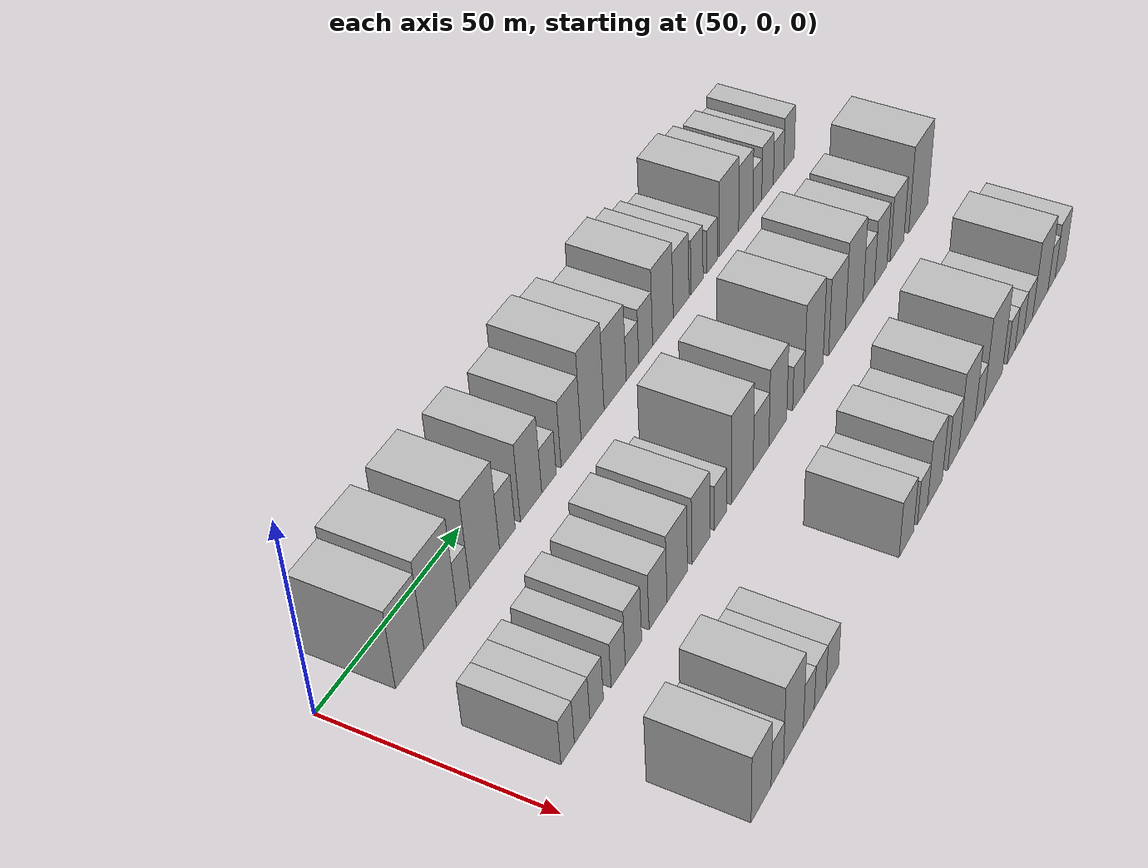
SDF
<sdf version="1.6">
 <world name="default">
  <model name="building_38">
   <static>1</static>
   <pose>50.0000 15.9402 0 0.000000 0.000000 0.000000</pose>
   <link name="link">
    <pose>0 0 10.50 0 0 0</pose>
    <collision name="collision"><geometry><box><size>20.0000 9.8565 21.0000</size></box></geometry></collision>
    <visual name="visual">
     <cast_shadows>0</cast_shadows>
     <geometry><box><size>20.0000 9.8565 21.0000</size></box></geometry>
     <material>
      <script>
       <uri>model://HANNAS_wall/materials/scripts</uri>
       <uri>model://HANNAS_wall/materials/textures</uri>
       <name>vrc/HANNAS_wall</name>
      </script>
     </material>
    </visual>
   </link>
  </model>
  <model name="building_39">
   <static>1</static>
   <pose>50.0000 26.6583 0 0.000000 0.000000 0.000000</pose>
   <link name="link">
    <pose>0 0 12.00 0 0 0</pose>
    <collision name="collision"><geometry><box><size>20.0000 11.5798 24.0000</size></box></geometry></collision>
    <visual name="visual">
     <cast_shadows>0</cast_shadows>
     <geometry><box><size>20.0000 11.5798 24.0000</size></box></geometry>
     <material>
      <script>
       <uri>model://HANNAS_wall/materials/scripts</uri>
       <uri>model://HANNAS_wall/materials/textures</uri>
       <name>vrc/HANNAS_wall</name>
      </script>
     </material>
    </visual>
   </link>
  </model>
  <model name="building_40">
   <static>1</static>
   <pose>50.0000 34.9104 0 0.000000 0.000000 0.000000</pose>
   <link name="link">
    <pose>0 0 6.00 0 0 0</pose>
    <collision name="collision"><geometry><box><size>20.0000 4.9244 12.0000</size></box></geometry></collision>
    <visual name="visual">
     <cast_shadows>0</cast_shadows>
     <geometry><box><size>20.0000 4.9244 12.0000</size></box></geometry>
     <material>
      <script>
       <uri>model://HANNAS_wall/materials/scripts</uri>
       <uri>model://HANNAS_wall/materials/textures</uri>
       <name>vrc/HANNAS_wall</name>
      </script>
     </material>
    </visual>
   </link>
  </model>
  <model name="building_41">
   <static>1</static>
   <pose>50.0000 42.9367 0 0.000000 0.000000 0.000000</pose>
   <link name="link">
    <pose>0 0 12.00 0 0 0</pose>
    <collision name="collision"><geometry><box><size>20.0000 11.1283 24.0000</size></box></geometry></collision>
    <visual name="visual">
     <cast_shadows>0</cast_shadows>
     <geometry><box><size>20.0000 11.1283 24.0000</size></box></geometry>
     <material>
      <script>
       <uri>model://HANNAS_wall/materials/scripts</uri>
       <uri>model://HANNAS_wall/materials/textures</uri>
       <name>vrc/HANNAS_wall</name>
      </script>
     </material>
    </visual>
   </link>
  </model>
  <model name="building_42">
   <static>1</static>
   <pose>50.0000 51.5553 0 0.000000 0.000000 0.000000</pose>
   <link name="link">
    <pose>0 0 7.50 0 0 0</pose>
    <collision name="collision"><geometry><box><size>20.0000 6.1088 15.0000</size></box></geometry></collision>
    <visual name="visual">
     <cast_shadows>0</cast_shadows>
     <geometry><box><size>20.0000 6.1088 15.0000</size></box></geometry>
     <material>
      <script>
       <uri>model://HANNAS_wall/materials/scripts</uri>
       <uri>model://HANNAS_wall/materials/textures</uri>
       <name>vrc/HANNAS_wall</name>
      </script>
     </material>
    </visual>
   </link>
  </model>
  <model name="building_43">
   <static>1</static>
   <pose>50.0000 60.8794 0 0.000000 0.000000 0.000000</pose>
   <link name="link">
    <pose>0 0 10.50 0 0 0</pose>
    <collision name="collision"><geometry><box><size>20.0000 8.5394 21.0000</size></box></geometry></collision>
    <visual name="visual">
     <cast_shadows>0</cast_shadows>
     <geometry><box><size>20.0000 8.5394 21.0000</size></box></geometry>
     <material>
      <script>
       <uri>model://HANNAS_wall/materials/scripts</uri>
       <uri>model://HANNAS_wall/materials/textures</uri>
       <name>vrc/HANNAS_wall</name>
      </script>
     </material>
    </visual>
   </link>
  </model>
  <model name="building_44">
   <static>1</static>
   <pose>50.0000 68.1219 0 0.000000 0.000000 0.000000</pose>
   <link name="link">
    <pose>0 0 6.00 0 0 0</pose>
    <collision name="collision"><geometry><box><size>20.0000 5.9457 12.0000</size></box></geometry></collision>
    <visual name="visual">
     <cast_shadows>0</cast_shadows>
     <geometry><box><size>20.0000 5.9457 12.0000</size></box></geometry>
     <material>
      <script>
       <uri>model://HANNAS_wall/materials/scripts</uri>
       <uri>model://HANNAS_wall/materials/textures</uri>
       <name>vrc/HANNAS_wall</name>
      </script>
     </material>
    </visual>
   </link>
  </model>
  <model name="building_45">
   <static>1</static>
   <pose>50.0000 77.2916 0 0.000000 0.000000 0.000000</pose>
   <link name="link">
    <pose>0 0 9.00 0 0 0</pose>
    <collision name="collision"><geometry><box><size>20.0000 8.3937 18.0000</size></box></geometry></collision>
    <visual name="visual">
     <cast_shadows>0</cast_shadows>
     <geometry><box><size>20.0000 8.3937 18.0000</size></box></geometry>
     <material>
      <script>
       <uri>model://HANNAS_wall/materials/scripts</uri>
       <uri>model://HANNAS_wall/materials/textures</uri>
       <name>vrc/HANNAS_wall</name>
      </script>
     </material>
    </visual>
   </link>
  </model>
  <model name="building_46">
   <static>1</static>
   <pose>50.0000 86.4690 0 0.000000 0.000000 0.000000</pose>
   <link name="link">
    <pose>0 0 12.00 0 0 0</pose>
    <collision name="collision"><geometry><box><size>20.0000 9.9612 24.0000</size></box></geometry></collision>
    <visual name="visual">
     <cast_shadows>0</cast_shadows>
     <geometry><box><size>20.0000 9.9612 24.0000</size></box></geometry>
     <material>
      <script>
       <uri>model://HANNAS_wall/materials/scripts</uri>
       <uri>model://HANNAS_wall/materials/textures</uri>
       <name>vrc/HANNAS_wall</name>
      </script>
     </material>
    </visual>
   </link>
  </model>
  <model name="building_47">
   <static>1</static>
   <pose>50.0000 96.3936 0 0.000000 0.000000 0.000000</pose>
   <link name="link">
    <pose>0 0 10.50 0 0 0</pose>
    <collision name="collision"><geometry><box><size>20.0000 9.8879 21.0000</size></box></geometry></collision>
    <visual name="visual">
     <cast_shadows>0</cast_shadows>
     <geometry><box><size>20.0000 9.8879 21.0000</size></box></geometry>
     <material>
      <script>
       <uri>model://HANNAS_wall/materials/scripts</uri>
       <uri>model://HANNAS_wall/materials/textures</uri>
       <name>vrc/HANNAS_wall</name>
      </script>
     </material>
    </visual>
   </link>
  </model>
  <model name="building_48">
   <static>1</static>
   <pose>50.0000 104.2200 0 0.000000 0.000000 0.000000</pose>
   <link name="link">
    <pose>0 0 6.00 0 0 0</pose>
    <collision name="collision"><geometry><box><size>20.0000 5.7649 12.0000</size></box></geometry></collision>
    <visual name="visual">
     <cast_shadows>0</cast_shadows>
     <geometry><box><size>20.0000 5.7649 12.0000</size></box></geometry>
     <material>
      <script>
       <uri>model://HANNAS_wall/materials/scripts</uri>
       <uri>model://HANNAS_wall/materials/textures</uri>
       <name>vrc/HANNAS_wall</name>
      </script>
     </material>
    </visual>
   </link>
  </model>
  <model name="building_49">
   <static>1</static>
   <pose>50.0000 110.3169 0 0.000000 0.000000 0.000000</pose>
   <link name="link">
    <pose>0 0 7.50 0 0 0</pose>
    <collision name="collision"><geometry><box><size>20.0000 6.4288 15.0000</size></box></geometry></collision>
    <visual name="visual">
     <cast_shadows>0</cast_shadows>
     <geometry><box><size>20.0000 6.4288 15.0000</size></box></geometry>
     <material>
      <script>
       <uri>model://HANNAS_wall/materials/scripts</uri>
       <uri>model://HANNAS_wall/materials/textures</uri>
       <name>vrc/HANNAS_wall</name>
      </script>
     </material>
    </visual>
   </link>
  </model>
  <model name="building_50">
   <static>1</static>
   <pose>50.0000 118.4352 0 0.000000 0.000000 0.000000</pose>
   <link name="link">
    <pose>0 0 10.50 0 0 0</pose>
    <collision name="collision"><geometry><box><size>20.0000 9.8078 21.0000</size></box></geometry></collision>
    <visual name="visual">
     <cast_shadows>0</cast_shadows>
     <geometry><box><size>20.0000 9.8078 21.0000</size></box></geometry>
     <material>
      <script>
       <uri>model://HANNAS_wall/materials/scripts</uri>
       <uri>model://HANNAS_wall/materials/textures</uri>
       <name>vrc/HANNAS_wall</name>
      </script>
     </material>
    </visual>
   </link>
  </model>
  <model name="building_51">
   <static>1</static>
   <pose>50.0000 127.1973 0 0.000000 0.000000 0.000000</pose>
   <link name="link">
    <pose>0 0 9.00 0 0 0</pose>
    <collision name="collision"><geometry><box><size>20.0000 7.7165 18.0000</size></box></geometry></collision>
    <visual name="visual">
     <cast_shadows>0</cast_shadows>
     <geometry><box><size>20.0000 7.7165 18.0000</size></box></geometry>
     <material>
      <script>
       <uri>model://HANNAS_wall/materials/scripts</uri>
       <uri>model://HANNAS_wall/materials/textures</uri>
       <name>vrc/HANNAS_wall</name>
      </script>
     </material>
    </visual>
   </link>
  </model>
  <model name="building_52">
   <static>1</static>
   <pose>50.0000 135.0569 0 0.000000 0.000000 0.000000</pose>
   <link name="link">
    <pose>0 0 7.50 0 0 0</pose>
    <collision name="collision"><geometry><box><size>20.0000 6.0026 15.0000</size></box></geometry></collision>
    <visual name="visual">
     <cast_shadows>0</cast_shadows>
     <geometry><box><size>20.0000 6.0026 15.0000</size></box></geometry>
     <material>
      <script>
       <uri>model://HANNAS_wall/materials/scripts</uri>
       <uri>model://HANNAS_wall/materials/textures</uri>
       <name>vrc/HANNAS_wall</name>
      </script>
     </material>
    </visual>
   </link>
  </model>
  <model name="building_53">
   <static>1</static>
   <pose>50.0000 142.7467 0 0.000000 0.000000 0.000000</pose>
   <link name="link">
    <pose>0 0 6.00 0 0 0</pose>
    <collision name="collision"><geometry><box><size>20.0000 5.3771 12.0000</size></box></geometry></collision>
    <visual name="visual">
     <cast_shadows>0</cast_shadows>
     <geometry><box><size>20.0000 5.3771 12.0000</size></box></geometry>
     <material>
      <script>
       <uri>model://HANNAS_wall/materials/scripts</uri>
       <uri>model://HANNAS_wall/materials/textures</uri>
       <name>vrc/HANNAS_wall</name>
      </script>
     </material>
    </visual>
   </link>
  </model>
  <model name="building_54">
   <static>1</static>
   <pose>50.0000 151.4809 0 0.000000 0.000000 0.000000</pose>
   <link name="link">
    <pose>0 0 10.50 0 0 0</pose>
    <collision name="collision"><geometry><box><size>20.0000 10.0912 21.0000</size></box></geometry></collision>
    <visual name="visual">
     <cast_shadows>0</cast_shadows>
     <geometry><box><size>20.0000 10.0912 21.0000</size></box></geometry>
     <material>
      <script>
       <uri>model://HANNAS_wall/materials/scripts</uri>
       <uri>model://HANNAS_wall/materials/textures</uri>
       <name>vrc/HANNAS_wall</name>
      </script>
     </material>
    </visual>
   </link>
  </model>
  <model name="building_55">
   <static>1</static>
   <pose>50.0000 160.3625 0 0.000000 0.000000 0.000000</pose>
   <link name="link">
    <pose>0 0 9.00 0 0 0</pose>
    <collision name="collision"><geometry><box><size>20.0000 7.6720 18.0000</size></box></geometry></collision>
    <visual name="visual">
     <cast_shadows>0</cast_shadows>
     <geometry><box><size>20.0000 7.6720 18.0000</size></box></geometry>
     <material>
      <script>
       <uri>model://HANNAS_wall/materials/scripts</uri>
       <uri>model://HANNAS_wall/materials/textures</uri>
       <name>vrc/HANNAS_wall</name>
      </script>
     </material>
    </visual>
   </link>
  </model>
  <model name="building_56">
   <static>1</static>
   <pose>50.0000 166.6195 0 0.000000 0.000000 0.000000</pose>
   <link name="link">
    <pose>0 0 6.00 0 0 0</pose>
    <collision name="collision"><geometry><box><size>20.0000 4.8420 12.0000</size></box></geometry></collision>
    <visual name="visual">
     <cast_shadows>0</cast_shadows>
     <geometry><box><size>20.0000 4.8420 12.0000</size></box></geometry>
     <material>
      <script>
       <uri>model://HANNAS_wall/materials/scripts</uri>
       <uri>model://HANNAS_wall/materials/textures</uri>
       <name>vrc/HANNAS_wall</name>
      </script>
     </material>
    </visual>
   </link>
  </model>
  <model name="building_57">
   <static>1</static>
   <pose>50.0000 172.2612 0 0.000000 0.000000 0.000000</pose>
   <link name="link">
    <pose>0 0 7.50 0 0 0</pose>
    <collision name="collision"><geometry><box><size>20.0000 6.4413 15.0000</size></box></geometry></collision>
    <visual name="visual">
     <cast_shadows>0</cast_shadows>
     <geometry><box><size>20.0000 6.4413 15.0000</size></box></geometry>
     <material>
      <script>
       <uri>model://HANNAS_wall/materials/scripts</uri>
       <uri>model://HANNAS_wall/materials/textures</uri>
       <name>vrc/HANNAS_wall</name>
      </script>
     </material>
    </visual>
   </link>
  </model>
  <model name="building_58">
   <static>1</static>
   <pose>50.0000 178.4415 0 0.000000 0.000000 0.000000</pose>
   <link name="link">
    <pose>0 0 6.00 0 0 0</pose>
    <collision name="collision"><geometry><box><size>20.0000 5.9194 12.0000</size></box></geometry></collision>
    <visual name="visual">
     <cast_shadows>0</cast_shadows>
     <geometry><box><size>20.0000 5.9194 12.0000</size></box></geometry>
     <material>
      <script>
       <uri>model://HANNAS_wall/materials/scripts</uri>
       <uri>model://HANNAS_wall/materials/textures</uri>
       <name>vrc/HANNAS_wall</name>
      </script>
     </material>
    </visual>
   </link>
  </model>
  <model name="building_59">
   <static>1</static>
   <pose>50.0000 184.4137 0 0.000000 0.000000 0.000000</pose>
   <link name="link">
    <pose>0 0 7.50 0 0 0</pose>
    <collision name="collision"><geometry><box><size>20.0000 6.0249 15.0000</size></box></geometry></collision>
    <visual name="visual">
     <cast_shadows>0</cast_shadows>
     <geometry><box><size>20.0000 6.0249 15.0000</size></box></geometry>
     <material>
      <script>
       <uri>model://HANNAS_wall/materials/scripts</uri>
       <uri>model://HANNAS_wall/materials/textures</uri>
       <name>vrc/HANNAS_wall</name>
      </script>
     </material>
    </visual>
   </link>
  </model>
  <model name="building_118">
   <static>1</static>
   <pose>85.0000 11.5619 0 0.000000 0.000000 0.000000</pose>
   <link name="link">
    <pose>0 0 6.00 0 0 0</pose>
    <collision name="collision"><geometry><box><size>20.0000 4.9472 12.0000</size></box></geometry></collision>
    <visual name="visual">
     <cast_shadows>0</cast_shadows>
     <geometry><box><size>20.0000 4.9472 12.0000</size></box></geometry>
     <material>
      <script>
       <uri>model://HANNAS_wall/materials/scripts</uri>
       <uri>model://HANNAS_wall/materials/textures</uri>
       <name>vrc/HANNAS_wall</name>
      </script>
     </material>
    </visual>
   </link>
  </model>
  <model name="building_119">
   <static>1</static>
   <pose>85.0000 16.9210 0 0.000000 0.000000 0.000000</pose>
   <link name="link">
    <pose>0 0 6.00 0 0 0</pose>
    <collision name="collision"><geometry><box><size>20.0000 5.7710 12.0000</size></box></geometry></collision>
    <visual name="visual">
     <cast_shadows>0</cast_shadows>
     <geometry><box><size>20.0000 5.7710 12.0000</size></box></geometry>
     <material>
      <script>
       <uri>model://HANNAS_wall/materials/scripts</uri>
       <uri>model://HANNAS_wall/materials/textures</uri>
       <name>vrc/HANNAS_wall</name>
      </script>
     </material>
    </visual>
   </link>
  </model>
  <model name="building_120">
   <static>1</static>
   <pose>85.0000 22.3792 0 0.000000 0.000000 0.000000</pose>
   <link name="link">
    <pose>0 0 6.00 0 0 0</pose>
    <collision name="collision"><geometry><box><size>20.0000 5.1455 12.0000</size></box></geometry></collision>
    <visual name="visual">
     <cast_shadows>0</cast_shadows>
     <geometry><box><size>20.0000 5.1455 12.0000</size></box></geometry>
     <material>
      <script>
       <uri>model://HANNAS_wall/materials/scripts</uri>
       <uri>model://HANNAS_wall/materials/textures</uri>
       <name>vrc/HANNAS_wall</name>
      </script>
     </material>
    </visual>
   </link>
  </model>
  <model name="building_121">
   <static>1</static>
   <pose>85.0000 30.7316 0 0.000000 0.000000 0.000000</pose>
   <link name="link">
    <pose>0 0 6.00 0 0 0</pose>
    <collision name="collision"><geometry><box><size>20.0000 5.5592 12.0000</size></box></geometry></collision>
    <visual name="visual">
     <cast_shadows>0</cast_shadows>
     <geometry><box><size>20.0000 5.5592 12.0000</size></box></geometry>
     <material>
      <script>
       <uri>model://HANNAS_wall/materials/scripts</uri>
       <uri>model://HANNAS_wall/materials/textures</uri>
       <name>vrc/HANNAS_wall</name>
      </script>
     </material>
    </visual>
   </link>
  </model>
  <model name="building_122">
   <static>1</static>
   <pose>85.0000 36.7617 0 0.000000 0.000000 0.000000</pose>
   <link name="link">
    <pose>0 0 7.50 0 0 0</pose>
    <collision name="collision"><geometry><box><size>20.0000 6.5011 15.0000</size></box></geometry></collision>
    <visual name="visual">
     <cast_shadows>0</cast_shadows>
     <geometry><box><size>20.0000 6.5011 15.0000</size></box></geometry>
     <material>
      <script>
       <uri>model://HANNAS_wall/materials/scripts</uri>
       <uri>model://HANNAS_wall/materials/textures</uri>
       <name>vrc/HANNAS_wall</name>
      </script>
     </material>
    </visual>
   </link>
  </model>
  <model name="building_123">
   <static>1</static>
   <pose>85.0000 46.7234 0 0.000000 0.000000 0.000000</pose>
   <link name="link">
    <pose>0 0 7.50 0 0 0</pose>
    <collision name="collision"><geometry><box><size>20.0000 7.4222 15.0000</size></box></geometry></collision>
    <visual name="visual">
     <cast_shadows>0</cast_shadows>
     <geometry><box><size>20.0000 7.4222 15.0000</size></box></geometry>
     <material>
      <script>
       <uri>model://HANNAS_wall/materials/scripts</uri>
       <uri>model://HANNAS_wall/materials/textures</uri>
       <name>vrc/HANNAS_wall</name>
      </script>
     </material>
    </visual>
   </link>
  </model>
  <model name="building_124">
   <static>1</static>
   <pose>85.0000 54.7696 0 0.000000 0.000000 0.000000</pose>
   <link name="link">
    <pose>0 0 9.00 0 0 0</pose>
    <collision name="collision"><geometry><box><size>20.0000 8.6703 18.0000</size></box></geometry></collision>
    <visual name="visual">
     <cast_shadows>0</cast_shadows>
     <geometry><box><size>20.0000 8.6703 18.0000</size></box></geometry>
     <material>
      <script>
       <uri>model://HANNAS_wall/materials/scripts</uri>
       <uri>model://HANNAS_wall/materials/textures</uri>
       <name>vrc/HANNAS_wall</name>
      </script>
     </material>
    </visual>
   </link>
  </model>
  <model name="building_125">
   <static>1</static>
   <pose>85.0000 65.0100 0 0.000000 0.000000 0.000000</pose>
   <link name="link">
    <pose>0 0 9.00 0 0 0</pose>
    <collision name="collision"><geometry><box><size>20.0000 7.8105 18.0000</size></box></geometry></collision>
    <visual name="visual">
     <cast_shadows>0</cast_shadows>
     <geometry><box><size>20.0000 7.8105 18.0000</size></box></geometry>
     <material>
      <script>
       <uri>model://HANNAS_wall/materials/scripts</uri>
       <uri>model://HANNAS_wall/materials/textures</uri>
       <name>vrc/HANNAS_wall</name>
      </script>
     </material>
    </visual>
   </link>
  </model>
  <model name="building_126">
   <static>1</static>
   <pose>85.0000 73.7305 0 0.000000 0.000000 0.000000</pose>
   <link name="link">
    <pose>0 0 6.00 0 0 0</pose>
    <collision name="collision"><geometry><box><size>20.0000 5.6304 12.0000</size></box></geometry></collision>
    <visual name="visual">
     <cast_shadows>0</cast_shadows>
     <geometry><box><size>20.0000 5.6304 12.0000</size></box></geometry>
     <material>
      <script>
       <uri>model://HANNAS_wall/materials/scripts</uri>
       <uri>model://HANNAS_wall/materials/textures</uri>
       <name>vrc/HANNAS_wall</name>
      </script>
     </material>
    </visual>
   </link>
  </model>
  <model name="building_127">
   <static>1</static>
   <pose>85.0000 83.6851 0 0.000000 0.000000 0.000000</pose>
   <link name="link">
    <pose>0 0 12.00 0 0 0</pose>
    <collision name="collision"><geometry><box><size>20.0000 10.2790 24.0000</size></box></geometry></collision>
    <visual name="visual">
     <cast_shadows>0</cast_shadows>
     <geometry><box><size>20.0000 10.2790 24.0000</size></box></geometry>
     <material>
      <script>
       <uri>model://HANNAS_wall/materials/scripts</uri>
       <uri>model://HANNAS_wall/materials/textures</uri>
       <name>vrc/HANNAS_wall</name>
      </script>
     </material>
    </visual>
   </link>
  </model>
  <model name="building_128">
   <static>1</static>
   <pose>85.0000 92.5722 0 0.000000 0.000000 0.000000</pose>
   <link name="link">
    <pose>0 0 7.50 0 0 0</pose>
    <collision name="collision"><geometry><box><size>20.0000 7.4952 15.0000</size></box></geometry></collision>
    <visual name="visual">
     <cast_shadows>0</cast_shadows>
     <geometry><box><size>20.0000 7.4952 15.0000</size></box></geometry>
     <material>
      <script>
       <uri>model://HANNAS_wall/materials/scripts</uri>
       <uri>model://HANNAS_wall/materials/textures</uri>
       <name>vrc/HANNAS_wall</name>
      </script>
     </material>
    </visual>
   </link>
  </model>
  <model name="building_129">
   <static>1</static>
   <pose>85.0000 100.7030 0 0.000000 0.000000 0.000000</pose>
   <link name="link">
    <pose>0 0 10.50 0 0 0</pose>
    <collision name="collision"><geometry><box><size>20.0000 8.7663 21.0000</size></box></geometry></collision>
    <visual name="visual">
     <cast_shadows>0</cast_shadows>
     <geometry><box><size>20.0000 8.7663 21.0000</size></box></geometry>
     <material>
      <script>
       <uri>model://HANNAS_wall/materials/scripts</uri>
       <uri>model://HANNAS_wall/materials/textures</uri>
       <name>vrc/HANNAS_wall</name>
      </script>
     </material>
    </visual>
   </link>
  </model>
  <model name="building_130">
   <static>1</static>
   <pose>85.0000 110.9549 0 0.000000 0.000000 0.000000</pose>
   <link name="link">
    <pose>0 0 6.00 0 0 0</pose>
    <collision name="collision"><geometry><box><size>20.0000 5.7376 12.0000</size></box></geometry></collision>
    <visual name="visual">
     <cast_shadows>0</cast_shadows>
     <geometry><box><size>20.0000 5.7376 12.0000</size></box></geometry>
     <material>
      <script>
       <uri>model://HANNAS_wall/materials/scripts</uri>
       <uri>model://HANNAS_wall/materials/textures</uri>
       <name>vrc/HANNAS_wall</name>
      </script>
     </material>
    </visual>
   </link>
  </model>
  <model name="building_131">
   <static>1</static>
   <pose>85.0000 118.7785 0 0.000000 0.000000 0.000000</pose>
   <link name="link">
    <pose>0 0 12.00 0 0 0</pose>
    <collision name="collision"><geometry><box><size>20.0000 9.9097 24.0000</size></box></geometry></collision>
    <visual name="visual">
     <cast_shadows>0</cast_shadows>
     <geometry><box><size>20.0000 9.9097 24.0000</size></box></geometry>
     <material>
      <script>
       <uri>model://HANNAS_wall/materials/scripts</uri>
       <uri>model://HANNAS_wall/materials/textures</uri>
       <name>vrc/HANNAS_wall</name>
      </script>
     </material>
    </visual>
   </link>
  </model>
  <model name="building_132">
   <static>1</static>
   <pose>85.0000 131.2164 0 0.000000 0.000000 0.000000</pose>
   <link name="link">
    <pose>0 0 10.50 0 0 0</pose>
    <collision name="collision"><geometry><box><size>20.0000 8.9660 21.0000</size></box></geometry></collision>
    <visual name="visual">
     <cast_shadows>0</cast_shadows>
     <geometry><box><size>20.0000 8.9660 21.0000</size></box></geometry>
     <material>
      <script>
       <uri>model://HANNAS_wall/materials/scripts</uri>
       <uri>model://HANNAS_wall/materials/textures</uri>
       <name>vrc/HANNAS_wall</name>
      </script>
     </material>
    </visual>
   </link>
  </model>
  <model name="building_133">
   <static>1</static>
   <pose>85.0000 140.6060 0 0.000000 0.000000 0.000000</pose>
   <link name="link">
    <pose>0 0 12.00 0 0 0</pose>
    <collision name="collision"><geometry><box><size>20.0000 9.8133 24.0000</size></box></geometry></collision>
    <visual name="visual">
     <cast_shadows>0</cast_shadows>
     <geometry><box><size>20.0000 9.8133 24.0000</size></box></geometry>
     <material>
      <script>
       <uri>model://HANNAS_wall/materials/scripts</uri>
       <uri>model://HANNAS_wall/materials/textures</uri>
       <name>vrc/HANNAS_wall</name>
      </script>
     </material>
    </visual>
   </link>
  </model>
  <model name="building_134">
   <static>1</static>
   <pose>85.0000 148.7851 0 0.000000 0.000000 0.000000</pose>
   <link name="link">
    <pose>0 0 7.50 0 0 0</pose>
    <collision name="collision"><geometry><box><size>20.0000 6.5448 15.0000</size></box></geometry></collision>
    <visual name="visual">
     <cast_shadows>0</cast_shadows>
     <geometry><box><size>20.0000 6.5448 15.0000</size></box></geometry>
     <material>
      <script>
       <uri>model://HANNAS_wall/materials/scripts</uri>
       <uri>model://HANNAS_wall/materials/textures</uri>
       <name>vrc/HANNAS_wall</name>
      </script>
     </material>
    </visual>
   </link>
  </model>
  <model name="building_135">
   <static>1</static>
   <pose>85.0000 155.6688 0 0.000000 0.000000 0.000000</pose>
   <link name="link">
    <pose>0 0 9.00 0 0 0</pose>
    <collision name="collision"><geometry><box><size>20.0000 7.2227 18.0000</size></box></geometry></collision>
    <visual name="visual">
     <cast_shadows>0</cast_shadows>
     <geometry><box><size>20.0000 7.2227 18.0000</size></box></geometry>
     <material>
      <script>
       <uri>model://HANNAS_wall/materials/scripts</uri>
       <uri>model://HANNAS_wall/materials/textures</uri>
       <name>vrc/HANNAS_wall</name>
      </script>
     </material>
    </visual>
   </link>
  </model>
  <model name="building_136">
   <static>1</static>
   <pose>85.0000 165.3588 0 0.000000 0.000000 0.000000</pose>
   <link name="link">
    <pose>0 0 9.00 0 0 0</pose>
    <collision name="collision"><geometry><box><size>20.0000 8.1575 18.0000</size></box></geometry></collision>
    <visual name="visual">
     <cast_shadows>0</cast_shadows>
     <geometry><box><size>20.0000 8.1575 18.0000</size></box></geometry>
     <material>
      <script>
       <uri>model://HANNAS_wall/materials/scripts</uri>
       <uri>model://HANNAS_wall/materials/textures</uri>
       <name>vrc/HANNAS_wall</name>
      </script>
     </material>
    </visual>
   </link>
  </model>
  <model name="building_137">
   <static>1</static>
   <pose>85.0000 178.3386 0 0.000000 0.000000 0.000000</pose>
   <link name="link">
    <pose>0 0 12.00 0 0 0</pose>
    <collision name="collision"><geometry><box><size>20.0000 11.8021 24.0000</size></box></geometry></collision>
    <visual name="visual">
     <cast_shadows>0</cast_shadows>
     <geometry><box><size>20.0000 11.8021 24.0000</size></box></geometry>
     <material>
      <script>
       <uri>model://HANNAS_wall/materials/scripts</uri>
       <uri>model://HANNAS_wall/materials/textures</uri>
       <name>vrc/HANNAS_wall</name>
      </script>
     </material>
    </visual>
   </link>
  </model>
  <model name="building_205">
   <static>1</static>
   <pose>120.0000 16.4575 0 0.000000 0.000000 0.000000</pose>
   <link name="link">
    <pose>0 0 9.00 0 0 0</pose>
    <collision name="collision"><geometry><box><size>20.0000 8.1766 18.0000</size></box></geometry></collision>
    <visual name="visual">
     <cast_shadows>0</cast_shadows>
     <geometry><box><size>20.0000 8.1766 18.0000</size></box></geometry>
     <material>
      <script>
       <uri>model://HANNAS_wall/materials/scripts</uri>
       <uri>model://HANNAS_wall/materials/textures</uri>
       <name>vrc/HANNAS_wall</name>
      </script>
     </material>
    </visual>
   </link>
  </model>
  <model name="building_206">
   <static>1</static>
   <pose>120.0000 23.1722 0 0.000000 0.000000 0.000000</pose>
   <link name="link">
    <pose>0 0 6.00 0 0 0</pose>
    <collision name="collision"><geometry><box><size>20.0000 5.2526 12.0000</size></box></geometry></collision>
    <visual name="visual">
     <cast_shadows>0</cast_shadows>
     <geometry><box><size>20.0000 5.2526 12.0000</size></box></geometry>
     <material>
      <script>
       <uri>model://HANNAS_wall/materials/scripts</uri>
       <uri>model://HANNAS_wall/materials/textures</uri>
       <name>vrc/HANNAS_wall</name>
      </script>
     </material>
    </visual>
   </link>
  </model>
  <model name="building_207">
   <static>1</static>
   <pose>120.0000 30.0752 0 0.000000 0.000000 0.000000</pose>
   <link name="link">
    <pose>0 0 10.50 0 0 0</pose>
    <collision name="collision"><geometry><box><size>20.0000 8.5535 21.0000</size></box></geometry></collision>
    <visual name="visual">
     <cast_shadows>0</cast_shadows>
     <geometry><box><size>20.0000 8.5535 21.0000</size></box></geometry>
     <material>
      <script>
       <uri>model://HANNAS_wall/materials/scripts</uri>
       <uri>model://HANNAS_wall/materials/textures</uri>
       <name>vrc/HANNAS_wall</name>
      </script>
     </material>
    </visual>
   </link>
  </model>
  <model name="building_208">
   <static>1</static>
   <pose>120.0000 36.7594 0 0.000000 0.000000 0.000000</pose>
   <link name="link">
    <pose>0 0 6.00 0 0 0</pose>
    <collision name="collision"><geometry><box><size>20.0000 4.8148 12.0000</size></box></geometry></collision>
    <visual name="visual">
     <cast_shadows>0</cast_shadows>
     <geometry><box><size>20.0000 4.8148 12.0000</size></box></geometry>
     <material>
      <script>
       <uri>model://HANNAS_wall/materials/scripts</uri>
       <uri>model://HANNAS_wall/materials/textures</uri>
       <name>vrc/HANNAS_wall</name>
      </script>
     </material>
    </visual>
   </link>
  </model>
  <model name="building_209">
   <static>1</static>
   <pose>120.0000 41.8063 0 0.000000 0.000000 0.000000</pose>
   <link name="link">
    <pose>0 0 6.00 0 0 0</pose>
    <collision name="collision"><geometry><box><size>20.0000 5.2790 12.0000</size></box></geometry></collision>
    <visual name="visual">
     <cast_shadows>0</cast_shadows>
     <geometry><box><size>20.0000 5.2790 12.0000</size></box></geometry>
     <material>
      <script>
       <uri>model://HANNAS_wall/materials/scripts</uri>
       <uri>model://HANNAS_wall/materials/textures</uri>
       <name>vrc/HANNAS_wall</name>
      </script>
     </material>
    </visual>
   </link>
  </model>
  <model name="building_210">
   <static>1</static>
   <pose>120.0000 47.3155 0 0.000000 0.000000 0.000000</pose>
   <link name="link">
    <pose>0 0 6.00 0 0 0</pose>
    <collision name="collision"><geometry><box><size>20.0000 5.7393 12.0000</size></box></geometry></collision>
    <visual name="visual">
     <cast_shadows>0</cast_shadows>
     <geometry><box><size>20.0000 5.7393 12.0000</size></box></geometry>
     <material>
      <script>
       <uri>model://HANNAS_wall/materials/scripts</uri>
       <uri>model://HANNAS_wall/materials/textures</uri>
       <name>vrc/HANNAS_wall</name>
      </script>
     </material>
    </visual>
   </link>
  </model>
  <model name="building_211">
   <static>1</static>
   <pose>120.0000 83.4143 0 0.000000 0.000000 0.000000</pose>
   <link name="link">
    <pose>0 0 7.50 0 0 0</pose>
    <collision name="collision"><geometry><box><size>20.0000 7.4861 15.0000</size></box></geometry></collision>
    <visual name="visual">
     <cast_shadows>0</cast_shadows>
     <geometry><box><size>20.0000 7.4861 15.0000</size></box></geometry>
     <material>
      <script>
       <uri>model://HANNAS_wall/materials/scripts</uri>
       <uri>model://HANNAS_wall/materials/textures</uri>
       <name>vrc/HANNAS_wall</name>
      </script>
     </material>
    </visual>
   </link>
  </model>
  <model name="building_212">
   <static>1</static>
   <pose>120.0000 91.7957 0 0.000000 0.000000 0.000000</pose>
   <link name="link">
    <pose>0 0 6.00 0 0 0</pose>
    <collision name="collision"><geometry><box><size>20.0000 5.2767 12.0000</size></box></geometry></collision>
    <visual name="visual">
     <cast_shadows>0</cast_shadows>
     <geometry><box><size>20.0000 5.2767 12.0000</size></box></geometry>
     <material>
      <script>
       <uri>model://HANNAS_wall/materials/scripts</uri>
       <uri>model://HANNAS_wall/materials/textures</uri>
       <name>vrc/HANNAS_wall</name>
      </script>
     </material>
    </visual>
   </link>
  </model>
  <model name="building_213">
   <static>1</static>
   <pose>120.0000 98.5011 0 0.000000 0.000000 0.000000</pose>
   <link name="link">
    <pose>0 0 9.00 0 0 0</pose>
    <collision name="collision"><geometry><box><size>20.0000 8.1341 18.0000</size></box></geometry></collision>
    <visual name="visual">
     <cast_shadows>0</cast_shadows>
     <geometry><box><size>20.0000 8.1341 18.0000</size></box></geometry>
     <material>
      <script>
       <uri>model://HANNAS_wall/materials/scripts</uri>
       <uri>model://HANNAS_wall/materials/textures</uri>
       <name>vrc/HANNAS_wall</name>
      </script>
     </material>
    </visual>
   </link>
  </model>
  <model name="building_214">
   <static>1</static>
   <pose>120.0000 108.6529 0 0.000000 0.000000 0.000000</pose>
   <link name="link">
    <pose>0 0 7.50 0 0 0</pose>
    <collision name="collision"><geometry><box><size>20.0000 6.1696 15.0000</size></box></geometry></collision>
    <visual name="visual">
     <cast_shadows>0</cast_shadows>
     <geometry><box><size>20.0000 6.1696 15.0000</size></box></geometry>
     <material>
      <script>
       <uri>model://HANNAS_wall/materials/scripts</uri>
       <uri>model://HANNAS_wall/materials/textures</uri>
       <name>vrc/HANNAS_wall</name>
      </script>
     </material>
    </visual>
   </link>
  </model>
  <model name="building_215">
   <static>1</static>
   <pose>120.0000 116.3397 0 0.000000 0.000000 0.000000</pose>
   <link name="link">
    <pose>0 0 10.50 0 0 0</pose>
    <collision name="collision"><geometry><box><size>20.0000 9.2039 21.0000</size></box></geometry></collision>
    <visual name="visual">
     <cast_shadows>0</cast_shadows>
     <geometry><box><size>20.0000 9.2039 21.0000</size></box></geometry>
     <material>
      <script>
       <uri>model://HANNAS_wall/materials/scripts</uri>
       <uri>model://HANNAS_wall/materials/textures</uri>
       <name>vrc/HANNAS_wall</name>
      </script>
     </material>
    </visual>
   </link>
  </model>
  <model name="building_216">
   <static>1</static>
   <pose>120.0000 123.5736 0 0.000000 0.000000 0.000000</pose>
   <link name="link">
    <pose>0 0 6.00 0 0 0</pose>
    <collision name="collision"><geometry><box><size>20.0000 5.2640 12.0000</size></box></geometry></collision>
    <visual name="visual">
     <cast_shadows>0</cast_shadows>
     <geometry><box><size>20.0000 5.2640 12.0000</size></box></geometry>
     <material>
      <script>
       <uri>model://HANNAS_wall/materials/scripts</uri>
       <uri>model://HANNAS_wall/materials/textures</uri>
       <name>vrc/HANNAS_wall</name>
      </script>
     </material>
    </visual>
   </link>
  </model>
  <model name="building_217">
   <static>1</static>
   <pose>120.0000 131.8440 0 0.000000 0.000000 0.000000</pose>
   <link name="link">
    <pose>0 0 12.00 0 0 0</pose>
    <collision name="collision"><geometry><box><size>20.0000 11.2766 24.0000</size></box></geometry></collision>
    <visual name="visual">
     <cast_shadows>0</cast_shadows>
     <geometry><box><size>20.0000 11.2766 24.0000</size></box></geometry>
     <material>
      <script>
       <uri>model://HANNAS_wall/materials/scripts</uri>
       <uri>model://HANNAS_wall/materials/textures</uri>
       <name>vrc/HANNAS_wall</name>
      </script>
     </material>
    </visual>
   </link>
  </model>
  <model name="building_218">
   <static>1</static>
   <pose>120.0000 142.9011 0 0.000000 0.000000 0.000000</pose>
   <link name="link">
    <pose>0 0 6.00 0 0 0</pose>
    <collision name="collision"><geometry><box><size>20.0000 4.8377 12.0000</size></box></geometry></collision>
    <visual name="visual">
     <cast_shadows>0</cast_shadows>
     <geometry><box><size>20.0000 4.8377 12.0000</size></box></geometry>
     <material>
      <script>
       <uri>model://HANNAS_wall/materials/scripts</uri>
       <uri>model://HANNAS_wall/materials/textures</uri>
       <name>vrc/HANNAS_wall</name>
      </script>
     </material>
    </visual>
   </link>
  </model>
  <model name="building_219">
   <static>1</static>
   <pose>120.0000 148.0628 0 0.000000 0.000000 0.000000</pose>
   <link name="link">
    <pose>0 0 6.00 0 0 0</pose>
    <collision name="collision"><geometry><box><size>20.0000 5.4856 12.0000</size></box></geometry></collision>
    <visual name="visual">
     <cast_shadows>0</cast_shadows>
     <geometry><box><size>20.0000 5.4856 12.0000</size></box></geometry>
     <material>
      <script>
       <uri>model://HANNAS_wall/materials/scripts</uri>
       <uri>model://HANNAS_wall/materials/textures</uri>
       <name>vrc/HANNAS_wall</name>
      </script>
     </material>
    </visual>
   </link>
  </model>
  <model name="building_220">
   <static>1</static>
   <pose>120.0000 153.6775 0 0.000000 0.000000 0.000000</pose>
   <link name="link">
    <pose>0 0 6.00 0 0 0</pose>
    <collision name="collision"><geometry><box><size>20.0000 5.7438 12.0000</size></box></geometry></collision>
    <visual name="visual">
     <cast_shadows>0</cast_shadows>
     <geometry><box><size>20.0000 5.7438 12.0000</size></box></geometry>
     <material>
      <script>
       <uri>model://HANNAS_wall/materials/scripts</uri>
       <uri>model://HANNAS_wall/materials/textures</uri>
       <name>vrc/HANNAS_wall</name>
      </script>
     </material>
    </visual>
   </link>
  </model>
  <model name="building_221">
   <static>1</static>
   <pose>120.0000 161.6385 0 0.000000 0.000000 0.000000</pose>
   <link name="link">
    <pose>0 0 10.50 0 0 0</pose>
    <collision name="collision"><geometry><box><size>20.0000 10.1784 21.0000</size></box></geometry></collision>
    <visual name="visual">
     <cast_shadows>0</cast_shadows>
     <geometry><box><size>20.0000 10.1784 21.0000</size></box></geometry>
     <material>
      <script>
       <uri>model://HANNAS_wall/materials/scripts</uri>
       <uri>model://HANNAS_wall/materials/textures</uri>
       <name>vrc/HANNAS_wall</name>
      </script>
     </material>
    </visual>
   </link>
  </model>
  <model name="building_222">
   <static>1</static>
   <pose>120.0000 169.1305 0 0.000000 0.000000 0.000000</pose>
   <link name="link">
    <pose>0 0 6.00 0 0 0</pose>
    <collision name="collision"><geometry><box><size>20.0000 4.8055 12.0000</size></box></geometry></collision>
    <visual name="visual">
     <cast_shadows>0</cast_shadows>
     <geometry><box><size>20.0000 4.8055 12.0000</size></box></geometry>
     <material>
      <script>
       <uri>model://HANNAS_wall/materials/scripts</uri>
       <uri>model://HANNAS_wall/materials/textures</uri>
       <name>vrc/HANNAS_wall</name>
      </script>
     </material>
    </visual>
   </link>
  </model>
  <model name="building_223">
   <static>1</static>
   <pose>120.0000 175.0907 0 0.000000 0.000000 0.000000</pose>
   <link name="link">
    <pose>0 0 7.50 0 0 0</pose>
    <collision name="collision"><geometry><box><size>20.0000 7.1150 15.0000</size></box></geometry></collision>
    <visual name="visual">
     <cast_shadows>0</cast_shadows>
     <geometry><box><size>20.0000 7.1150 15.0000</size></box></geometry>
     <material>
      <script>
       <uri>model://HANNAS_wall/materials/scripts</uri>
       <uri>model://HANNAS_wall/materials/textures</uri>
       <name>vrc/HANNAS_wall</name>
      </script>
     </material>
    </visual>
   </link>
  </model>
 </world>
</sdf>
